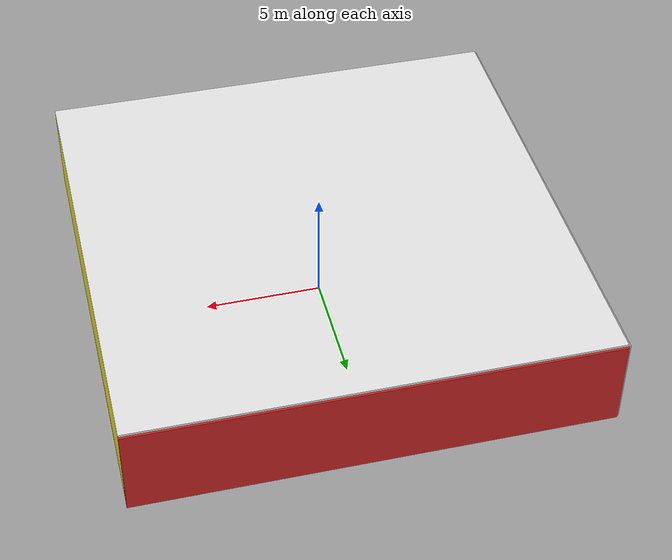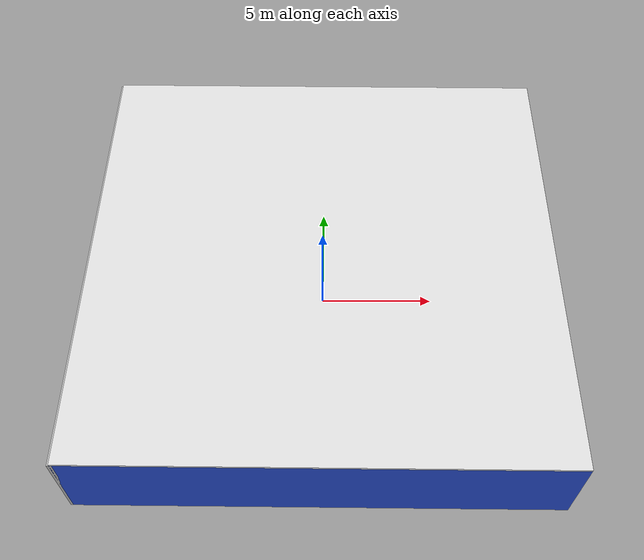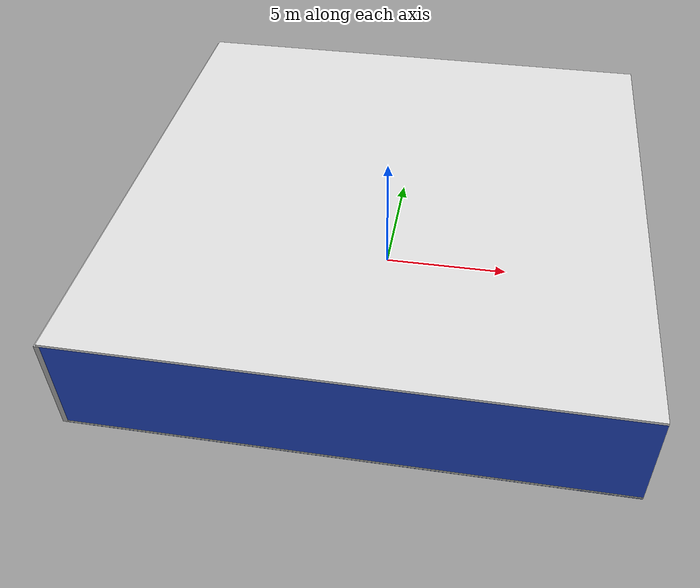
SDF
<sdf version="1.4">
 <world name="default">
  <physics type="ode">
   <max_step_size>0.001</max_step_size>
   <real_time_factor>1</real_time_factor>
   <real_time_update_rate>1000</real_time_update_rate>
   <gravity>0 0 -9.8</gravity>
  </physics>
  <scene><ambient>0.4 0.4 0.4 1</ambient><background>0.7 0.7 0.7 1</background><shadows>1</shadows></scene>
  <model name="Surrounding">
   <static>1</static>
   <link name="Ceiling">
    <collision name="Ceiling_Collision"><geometry><box><size>20 20 0.1</size></box></geometry></collision>
    <visual name="Ceiling_Visual">
     <geometry><box><size>20 20 0.1</size></box></geometry>
     <material>
      <script><uri>file://media/materials/scripts/gazebo.material</uri><name>Gazebo/White</name></script>
     </material>
    </visual>
    <pose>0 0 4.05 0 0 0</pose>
   </link>
   <link name="Wall_South">
    <collision name="Wall_South_Collision">
     <geometry><box><size>20 0 4</size></box></geometry>
     <pose>0 0 2 0 -0 0</pose>
    </collision>
    <visual name="Wall_South_Visual">
     <pose>0 0 2 0 -0 0</pose>
     <geometry><box><size>20 0 4</size></box></geometry>
     <material>
      <script><uri>file://media/materials/scripts/gazebo.material</uri><name>Gazebo/BlueLaser</name></script>
     </material>
    </visual>
    <velocity_decay><linear>0</linear><angular>0</angular></velocity_decay>
    <pose>0 -10 0 0 -0 0</pose>
   </link>
   <link name="Wall_East">
    <collision name="Wall_21_Collision">
     <geometry><box><size>20 0 4</size></box></geometry>
     <pose>0 0 2 0 -0 0</pose>
    </collision>
    <visual name="Wall_21_Visual">
     <pose>0 0 2 0 -0 0</pose>
     <geometry><box><size>20 0 4</size></box></geometry>
     <material>
      <script><uri>file://media/materials/scripts/gazebo.material</uri><name>Gazebo/YellowGlow</name></script>
     </material>
    </visual>
    <velocity_decay><linear>0</linear><angular>0</angular></velocity_decay>
    <pose>10 0 0 0 -0 1.5708</pose>
   </link>
   <link name="Wall_North">
    <collision name="Wall_22_Collision">
     <geometry><box><size>20 0.2 4</size></box></geometry>
     <pose>0 0 2 0 -0 0</pose>
    </collision>
    <visual name="Wall_22_Visual">
     <pose>0 0 2 0 -0 0</pose>
     <geometry><box><size>20 0.2 4</size></box></geometry>
     <material>
      <script><uri>file://media/materials/scripts/gazebo.material</uri><name>Gazebo/RedBright</name></script>
     </material>
    </visual>
    <velocity_decay><linear>0</linear><angular>0</angular></velocity_decay>
    <pose>0 10 0 0 -0 0</pose>
   </link>
   <link name="Wall_West">
    <collision name="Wall_23_Collision">
     <geometry><box><size>20 0.2 4</size></box></geometry>
     <pose>0 0 2 0 -0 0</pose>
    </collision>
    <visual name="Wall_23_Visual">
     <pose>0 0 2 0 -0 0</pose>
     <geometry><box><size>20 0.2 4</size></box></geometry>
     <material>
      <script><uri>file://media/materials/scripts/gazebo.material</uri><name>Gazebo/LightOff</name></script>
     </material>
    </visual>
    <velocity_decay><linear>0</linear><angular>0</angular></velocity_decay>
    <pose>-10 0 0 0 0 -1.5708</pose>
   </link>
   <link name="Ground_link">
    <collision name="collision">
     <pose>0 0 .05 0 -0 0</pose>
     <geometry><box><size>20 20 0.1</size></box></geometry>
    </collision>
    <visual name="visual">
     <pose>0 0 .05 0 -0 0</pose>
     <geometry><box><size>20 20 0.1</size></box></geometry>
     <material>
      <script><uri>file://media/materials/scripts/gazebo.material</uri><name>Gazebo/PaintedWall</name></script>
     </material>
    </visual>
   </link>
   <static>1</static>
  </model>
  <spherical_coordinates>
   <surface_model>EARTH_WGS84</surface_model>
   <latitude_deg>0</latitude_deg>
   <longitude_deg>0</longitude_deg>
   <elevation>0</elevation>
   <heading_deg>0</heading_deg>
  </spherical_coordinates>
  <light name="lightball_0" type="diffuse">
   <diffuse>0.8 0.8 0.8 1</diffuse>
   <specular>0.2 0.2 0.2 1</specular>
   <attenuation>
    <range>100</range>
    <constant>0.7</constant>
    <linear>0.01</linear>
    <quadratic>0.001</quadratic>
   </attenuation>
   <direction>-0.5 0.1 -0.9</direction>
   <pose>6.65325689939 1.15824696232 1.23139058144 0 0 0</pose>
  </light>
  <light name="lightball_1" type="diffuse">
   <diffuse>0.8 0.8 0.8 1</diffuse>
   <specular>0.2 0.2 0.2 1</specular>
   <attenuation>
    <range>100</range>
    <constant>0.7</constant>
    <linear>0.01</linear>
    <quadratic>0.001</quadratic>
   </attenuation>
   <direction>-0.5 0.1 -0.9</direction>
   <pose>-9.01140199075 -6.25998382939 3.55551282929 0 0 0</pose>
  </light>
  <light name="lightball_2" type="diffuse">
   <diffuse>0.8 0.8 0.8 1</diffuse>
   <specular>0.2 0.2 0.2 1</specular>
   <attenuation>
    <range>100</range>
    <constant>0.7</constant>
    <linear>0.01</linear>
    <quadratic>0.001</quadratic>
   </attenuation>
   <direction>-0.5 0.1 -0.9</direction>
   <pose>0.643659607502 -9.67824060376 2.94585211764 0 0 0</pose>
  </light>
  <light name="lightball_3" type="diffuse">
   <diffuse>0.8 0.8 0.8 1</diffuse>
   <specular>0.2 0.2 0.2 1</specular>
   <attenuation>
    <range>100</range>
    <constant>0.7</constant>
    <linear>0.01</linear>
    <quadratic>0.001</quadratic>
   </attenuation>
   <direction>-0.5 0.1 -0.9</direction>
   <pose>-2.7334552457 3.77721892408 2.25546886752 0 0 0</pose>
  </light>
  <light name="lightball_4" type="diffuse">
   <diffuse>0.8 0.8 0.8 1</diffuse>
   <specular>0.2 0.2 0.2 1</specular>
   <attenuation>
    <range>100</range>
    <constant>0.7</constant>
    <linear>0.01</linear>
    <quadratic>0.001</quadratic>
   </attenuation>
   <direction>-0.5 0.1 -0.9</direction>
   <pose>-1.26421454824 -1.29183797824 2.32996452772 0 0 0</pose>
  </light>
  <include>
   <uri>model://robocup_3Dsim_goal</uri>
   <pose>-5.11952248023 -0.900948312995 0 0 0 2.56628155624</pose>
  </include>
  <include><uri>model://cabinet</uri><pose>2.37437032708 -1.93845739311 0 0 0 2.25187883307</pose></include>
  <include><uri>model://cabinet</uri><pose>1.90447966274 1.13641887752 0 0 0 2.06267352936</pose></include>
  <include>
   <uri>model://textured_shapes</uri>
   <pose>5.47038892939 -7.5219856201 0 0 0 1.28840272787</pose>
  </include>
  <include>
   <uri>model://robocup_3Dsim_goal</uri>
   <pose>5.1701086535 -3.86667473882 0 0 0 1.59834981833</pose>
  </include>
  <include>
   <uri>model://construction_cone</uri>
   <pose>4.83807869403 7.53016615758 0 0 0 2.82064656385</pose>
  </include>
 </world>
</sdf>

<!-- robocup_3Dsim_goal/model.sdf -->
<sdf version="1.5">
  <model name="robocup_3d_goal">
    <static>true</static>
    <link name="left_post">
      <pose>0 1.05 0.45 0 0 0</pose>
      <collision name="collision">
        <geometry>
          <cylinder>
            <radius>0.05</radius>
            <length>0.9</length>
          </cylinder>
        </geometry>
      </collision>
      <visual name="visual">
        <geometry>
          <cylinder>
            <radius>0.05</radius>
            <length>0.9</length>
          </cylinder>
        </geometry>
        <material>
          <script>
            <uri>file://media/materials/scripts/gazebo.material</uri>
            <name>Gazebo/ZincYellow</name>
          </script>
        </material>
      </visual>
    </link>
    <link name="left_support_horiz_lower">
      <pose>0.30 1.05 0.01 0 0 0</pose>
      <collision name="collision">
        <geometry>
          <box>
            <size>0.50 0.02 0.02</size>
          </box>
        </geometry>
      </collision>
      <visual name="visual">
        <geometry>
          <box>
            <size>0.50 0.02 0.02</size>
          </box>
        </geometry>
        <material>
          <script>
            <uri>file://media/materials/scripts/gazebo.material</uri>
            <name>Gazebo/White</name>
          </script>
        </material>
      </visual>
    </link>
    <link name="left_support_horiz_upper">
      <pose>0.30 1.05 0.79 0 0 0</pose>
      <collision name="collision">
        <geometry>
          <box>
            <size>0.50 0.02 0.02</size>
          </box>
        </geometry>
      </collision>
      <visual name="visual">
        <geometry>
          <box>
            <size>0.50 0.02 0.02</size>
          </box>
        </geometry>
        <material>
          <script>
            <uri>file://media/materials/scripts/gazebo.material</uri>
            <name>Gazebo/White</name>
          </script>
        </material>
      </visual>
    </link>
    <link name="left_support_vertical">
      <pose>0.56 1.05 0.4 0 1.5708 0</pose>
      <collision name="collision">
        <geometry>
          <box>
            <size>0.80 0.02 0.02</size>
          </box>
        </geometry>
      </collision>
      <visual name="visual">
        <geometry>
          <box>
            <size>0.80 0.02 0.02</size>
          </box>
        </geometry>
        <material>
          <script>
            <uri>file://media/materials/scripts/gazebo.material</uri>
            <name>Gazebo/White</name>
          </script>
        </material>
      </visual>
    </link>
    <link name="right_support_horiz_lower">
      <pose>0.30 -1.05 0.01 0 0 0</pose>
      <collision name="collision">
        <geometry>
          <box>
            <size>0.50 0.02 0.02</size>
          </box>
        </geometry>
      </collision>
      <visual name="visual">
        <geometry>
          <box>
            <size>0.50 0.02 0.02</size>
          </box>
        </geometry>
        <material>
          <script>
            <uri>file://media/materials/scripts/gazebo.material</uri>
            <name>Gazebo/White</name>
          </script>
        </material>
      </visual>
    </link>
    <link name="right_support_horiz_upper">
      <pose>0.30 -1.05 0.79 0 0 0</pose>
      <collision name="collision">
        <geometry>
          <box>
            <size>0.50 0.02 0.02</size>
          </box>
        </geometry>
      </collision>
      <visual name="visual">
        <geometry>
          <box>
            <size>0.50 0.02 0.02</size>
          </box>
        </geometry>
        <material>
          <script>
            <uri>file://media/materials/scripts/gazebo.material</uri>
            <name>Gazebo/White</name>
          </script>
        </material>
      </visual>
    </link>
    <link name="right_support_vertical">
      <pose>0.56 -1.05 0.4 0 1.5708 0</pose>
      <collision name="collision">
        <geometry>
          <box>
            <size>0.80 0.02 0.02</size>
          </box>
        </geometry>
      </collision>
      <visual name="visual">
        <geometry>
          <box>
            <size>0.80 0.02 0.02</size>
          </box>
        </geometry>
        <material>
          <script>
            <uri>file://media/materials/scripts/gazebo.material</uri>
            <name>Gazebo/White</name>
          </script>
        </material>
      </visual>
    </link>
    <link name="center_support_horiz_lower">
      <pose>0.56 0 0.01 0 1.5708 0</pose>
      <collision name="collision">
        <geometry>
          <box>
            <size>0.02 2.08 0.02</size>
          </box>
        </geometry>
      </collision>
      <visual name="visual">
        <geometry>
          <box>
            <size>0.02 2.08 0.02</size>
          </box>
        </geometry>
        <material>
          <script>
            <uri>file://media/materials/scripts/gazebo.material</uri>
            <name>Gazebo/White</name>
          </script>
        </material>
      </visual>
    </link>
    <link name="center_support_horiz_upper">
      <pose>0.56 0 0.79 0 1.5708 0</pose>
      <collision name="collision">
        <geometry>
          <box>
            <size>0.02 2.08 0.02</size>
          </box>
        </geometry>
      </collision>
      <visual name="visual">
        <geometry>
          <box>
            <size>0.02 2.08 0.02</size>
          </box>
        </geometry>
        <material>
          <script>
            <uri>file://media/materials/scripts/gazebo.material</uri>
            <name>Gazebo/White</name>
          </script>
        </material>
      </visual>
    </link>
    <link name="right_post">
      <pose>0 -1.05 0.45 0 0 0</pose>
      <collision name="collision">
        <geometry>
          <cylinder>
            <radius>0.05</radius>
            <length>0.9</length>
          </cylinder>
        </geometry>
      </collision>
      <visual name="visual">
        <geometry>
          <cylinder>
            <radius>0.05</radius>
            <length>0.9</length>
          </cylinder>
        </geometry>
        <material>
          <script>
            <uri>file://media/materials/scripts/gazebo.material</uri>
            <name>Gazebo/ZincYellow</name>
          </script>
        </material>
      </visual>
    </link>
    <link name="crossbar">
      <pose>0 0 0.85 1.57 1.57 0</pose>
      <collision name="collision">
        <geometry>
          <cylinder>
            <radius>0.05</radius>
            <length>2.0</length>
          </cylinder>
        </geometry>
      </collision>
      <visual name="visual">
        <geometry>
          <cylinder>
            <radius>0.05</radius>
            <length>2.0</length>
          </cylinder>
        </geometry>
        <material>
          <script>
            <uri>file://media/materials/scripts/gazebo.material</uri>
            <name>Gazebo/ZincYellow</name>
          </script>
        </material>
      </visual>
    </link>
    <link name="center_net">
      <pose>0.56 0 0.40 0 0 0</pose>
      <collision name="collision">
        <geometry>
          <box>
            <size>0.01 2.1 0.80</size>
          </box>
        </geometry>
      </collision>
      <visual name="visual">
        <geometry>
          <box>
            <size>0.01 2.1 0.80</size>
          </box>
        </geometry>
        <material>
          <script>
            <uri>model://../model_source/models/robocup09_spl_field/materials/scripts/</uri>
            <uri>model://../model_source/models/robocup09_spl_field/materials/textures/</uri>
            <name>RoboCup/Net</name>
          </script>
        </material>
      </visual>
    </link>
    <link name="left_net">
      <pose>0.30 1.05 0.40 0 0 0</pose>
      <collision name="collision">
        <geometry>
          <box>
            <size>0.50 0.01 0.76</size>
          </box>
        </geometry>
      </collision>
      <visual name="visual">
        <geometry>
          <box>
            <size>0.50 0.01 0.76</size>
          </box>
        </geometry>
        <material>
          <script>
            <uri>model://../model_source/models/robocup09_spl_field/materials/scripts/</uri>
            <uri>model://../model_source/models/robocup09_spl_field/materials/textures/</uri>
            <name>RoboCup/Net</name>
          </script>
        </material>
      </visual>
    </link>
    <link name="right_net">
      <pose>0.30 -1.05 0.40 0 0 0</pose>
      <collision name="collision">
        <geometry>
          <box>
            <size>0.50 0.01 0.76</size>
          </box>
        </geometry>
      </collision>
      <visual name="visual">
        <geometry>
          <box>
            <size>0.50 0.01 0.76</size>
          </box>
        </geometry>
        <material>
          <script>
            <uri>model://../model_source/models/robocup09_spl_field/materials/scripts/</uri>
            <uri>model://../model_source/models/robocup09_spl_field/materials/textures/</uri>
            <name>RoboCup/Net</name>
          </script>
        </material>
      </visual>
    </link>
  </model>
</sdf>

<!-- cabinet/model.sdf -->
<sdf version="1.5">
  <model name="cabinet">
    <static>true</static>
    <link name="cabinet_bottom_plate">
      <inertial>
        <pose>0 0 -1 0 0 0</pose>
        <inertia>
          <ixx>2.050000</ixx>
          <ixy>0</ixy>
          <ixz>0</ixz>
          <iyy>2.050000</iyy>
          <iyz>0</iyz>
          <izz>2.050000</izz>
        </inertia>
        <mass>25.000000</mass>
      </inertial>
      <collision name="cabinet_bottom_plate_geom">
        <pose>0 0 0.010000 0 0 0</pose>
        <geometry>
          <box>
            <size>0.450000 0.450000 0.020000</size>
          </box>
        </geometry>
      </collision>
      <visual name="cabinet_bottom_plate_geom_visual">
        <pose>0 0 0.010000 0 0 0</pose>
        <geometry>
          <box>
            <size>0.450000 0.450000 0.020000</size>
          </box>
        </geometry>
        <material>
          <script>
            <uri>model://media/materials/scripts/gazebo.material</uri>
            <name>Gazebo/Wood</name>
          </script>
        </material>
      </visual>
      <collision name="cabinet_bottom_plate_geom_cabinet_back_plate">
        <pose>0.235000 0 0.510000 0 0 0</pose>
        <geometry>
          <box>
            <size>0.020000 0.450000 1.020000</size>
          </box>
        </geometry>
      </collision>
      <visual name="cabinet_bottom_plate_geom_cabinet_back_plate_visual">
        <pose>0.235000 0 0.510000 0 0 0</pose>
        <geometry>
          <box>
            <size>0.020000 0.450000 1.020000</size>
          </box>
        </geometry>
        <material>
          <script>
            <uri>model://media/materials/scripts/gazebo.material</uri>
            <name>Gazebo/Wood</name>
          </script>
        </material>
      </visual>
      <collision name="cabinet_bottom_plate_geom_cabinet_left_plate">
        <pose>0 0.235000 0.510000 0 0 0</pose>
        <geometry>
          <box>
            <size>0.450000 0.020000 1.020000</size>
          </box>
        </geometry>
      </collision>
      <visual name="cabinet_bottom_plate_geom_cabinet_left_plate_visual">
        <pose>0 0.235000 0.510000 0 0 0</pose>
        <geometry>
          <box>
            <size>0.450000 0.020000 1.020000</size>
          </box>
        </geometry>
        <material>
          <script>
            <uri>model://media/materials/scripts/gazebo.material</uri>
            <name>Gazebo/Wood</name>
          </script>
        </material>
      </visual>
      <collision name="cabinet_bottom_plate_geom_cabinet_middle_plate">
        <pose>0 0 0.510000 0 0 0</pose>
        <geometry>
          <box>
            <size>0.450000 0.450000 0.020000</size>
          </box>
        </geometry>
      </collision>
      <visual name="cabinet_bottom_plate_geom_cabinet_middle_plate_visual">
        <pose>0 0 0.510000 0 0 0</pose>
        <geometry>
          <box>
            <size>0.450000 0.450000 0.020000</size>
          </box>
        </geometry>
        <material>
          <script>
            <uri>model://media/materials/scripts/gazebo.material</uri>
            <name>Gazebo/Wood</name>
          </script>
        </material>
      </visual>
      <collision name="cabinet_bottom_plate_geom_cabinet_right_plate">
        <pose>0 -0.235000 0.510000 0 0 0</pose>
        <geometry>
          <box>
            <size>0.450000 0.020000 1.020000</size>
          </box>
        </geometry>
      </collision>
      <visual name="cabinet_bottom_plate_geom_cabinet_right_plate_visual">
        <pose>0 -0.235000 0.510000 0 0 0</pose>
        <geometry>
          <box>
            <size>0.450000 0.020000 1.020000</size>
          </box>
        </geometry>
        <material>
          <script>
            <uri>model://media/materials/scripts/gazebo.material</uri>
            <name>Gazebo/Wood</name>
          </script>
        </material>
      </visual>
      <collision name="cabinet_bottom_plate_geom_cabinet_top_plate">
        <pose>0 0 1.010000 0 0 0</pose>
        <geometry>
          <box>
            <size>0.450000 0.450000 0.020000</size>
          </box>
        </geometry>
      </collision>
      <visual name="cabinet_bottom_plate_geom_cabinet_top_plate_visual">
        <pose>0 0 1.010000 0 0 0</pose>
        <geometry>
          <box>
            <size>0.450000 0.450000 0.020000</size>
          </box>
        </geometry>
        <material>
          <script>
            <uri>model://media/materials/scripts/gazebo.material</uri>
            <name>Gazebo/Wood</name>
          </script>
        </material>
      </visual>
    </link>
  </model>
</sdf>

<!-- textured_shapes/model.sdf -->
<sdf version="1.6">
  <model name="textured_shapes">
    <pose>0 0 0.5 0 0 0</pose>
    <link name="box">
      <pose>0 -1.5 0 0 0 0</pose>
      <collision name="collision">
        <geometry>
          <box>
            <size>1 1 1</size>
          </box>
        </geometry>
      </collision>
      <visual name="visual">
        <geometry>
          <box>
            <size>1 1 1</size>
          </box>
        </geometry>
        <material>
          <script>
            <uri>model://../model_source/models/textured_shapes/materials/scripts</uri>
            <uri>model://../model_source/models/textured_shapes/materials/textures</uri>
            <name>TexturedShape/Squares</name>
          </script>
        </material>
      </visual>
    </link>
    <link name="sphere">
      <collision name="collision">
        <geometry>
          <sphere>
            <radius>0.5</radius>
          </sphere>
        </geometry>
      </collision>
      <visual name="visual">
        <geometry>
          <sphere>
            <radius>0.5</radius>
          </sphere>
        </geometry>
        <material>
          <script>
            <uri>model://../model_source/models/textured_shapes/materials/scripts</uri>
            <uri>model://../model_source/models/textured_shapes/materials/textures</uri>
            <name>TexturedShape/Squares</name>
          </script>
        </material>
      </visual>
    </link>
    <link name="cylinder">
      <pose>0 1.5 0 0 0 0</pose>
      <collision name="collision">
        <geometry>
          <cylinder>
            <radius>0.5</radius>
            <length>1</length>
          </cylinder>
        </geometry>
      </collision>
      <visual name="visual">
        <geometry>
          <cylinder>
            <radius>0.5</radius>
            <length>1</length>
          </cylinder>
        </geometry>
        <material>
          <script>
            <uri>model://../model_source/models/textured_shapes/materials/scripts</uri>
            <uri>model://../model_source/models/textured_shapes/materials/textures</uri>
            <name>TexturedShape/Squares</name>
          </script>
        </material>
      </visual>
    </link>
  </model>
</sdf>

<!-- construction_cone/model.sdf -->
<sdf version="1.5">
  <model name="Construction Cone">
    <link name="link">
      <collision name="collision">
        <geometry>
          <mesh>
            <scale>10 10 10</scale>
            <uri>file://isr-testbed/construction_cone/meshes/construction_cone.dae</uri>
          </mesh>
        </geometry>
      </collision>
      <visual name="visual">
        <geometry>
          <mesh>
            <scale>10 10 10</scale>
            <uri>file://isr-testbed/construction_cone/meshes/construction_cone.dae</uri>
          </mesh>
        </geometry>
      </visual>
    </link>
  </model>
</sdf>
